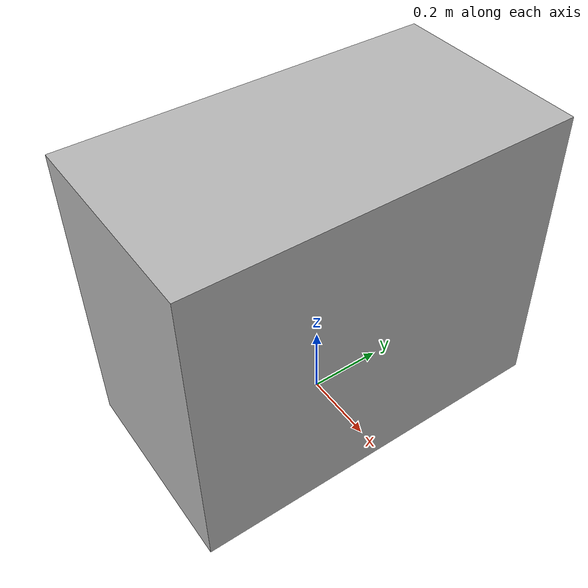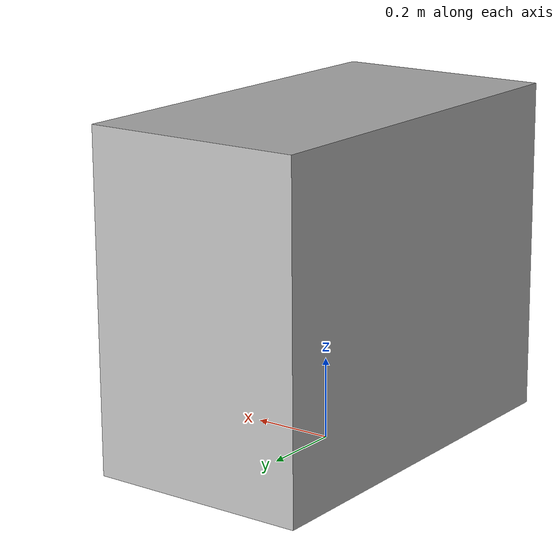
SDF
<?xml version="1.0" ?>
<sdf version="1.6">
  <model name="rwc2022/sink">
    <static>true</static>
    <link name="1_link">
      <collision name="1_col">
        <geometry>
          <box>
            <size>0.54 1.0 0.82</size>
          </box>
        </geometry>
      </collision>
      <visual name="1_vis">
        <geometry>
          <box>
            <size>0.54 1.0 0.82</size>
          </box>
        </geometry>
      </visual>
      <pose>0.0 0.0 0.41 0 0 0</pose>
    </link>
    <link name="on_top_of">
      <virtual_volume name="on_top_of_vv">
        <geometry>
          <box>
            <size>0.52 0.94 0.35</size>
          </box>
        </geometry>
        <pose>0.0 0.0 1.015 0 0 0</pose>
      </virtual_volume>
    </link>
    <link name="in_front_of">
      <virtual_volume name="in_front_of_vv">
        <geometry>
          <box>
            <size>0.2 0.4 0.01</size>
          </box>
        </geometry>
        <pose>0.77 0.0 0.005 0 0 0</pose>
      </virtual_volume>
    </link>
  </model>
</sdf>
